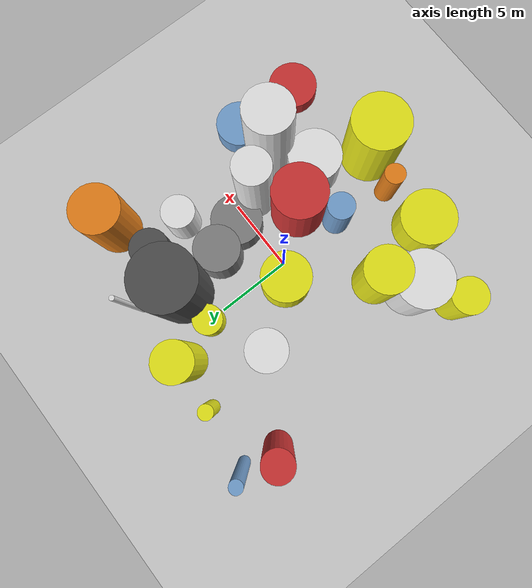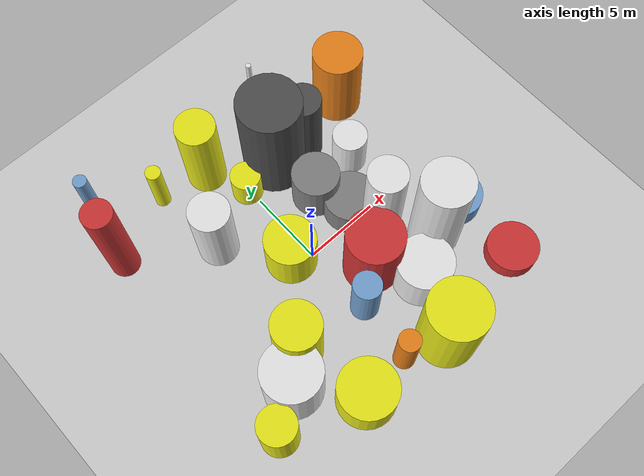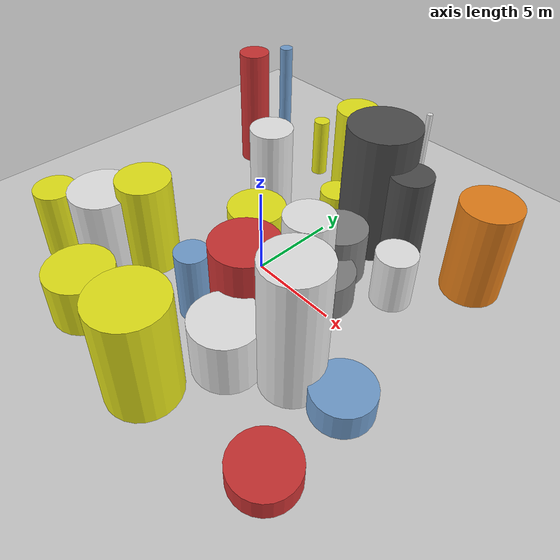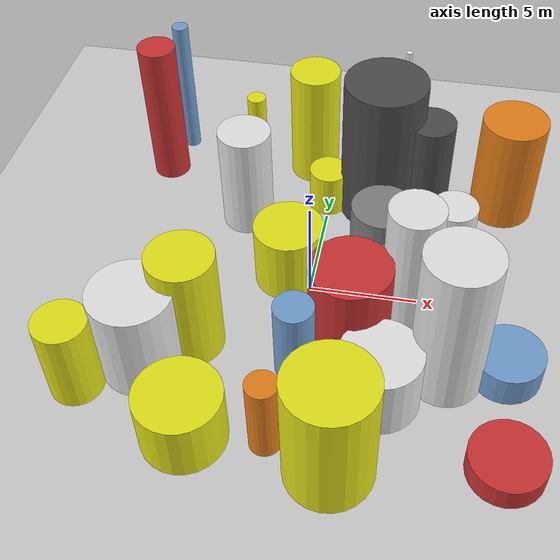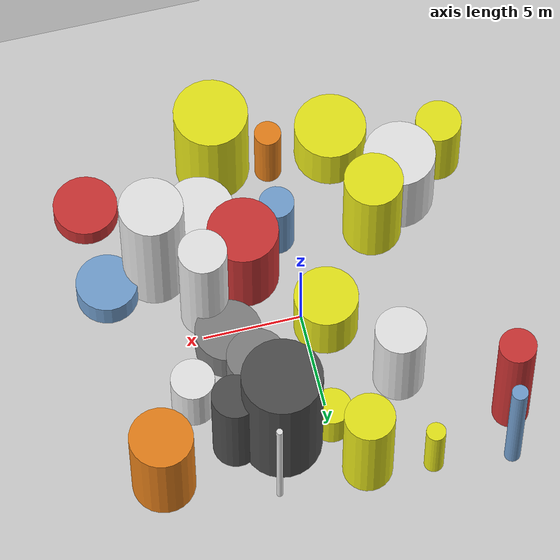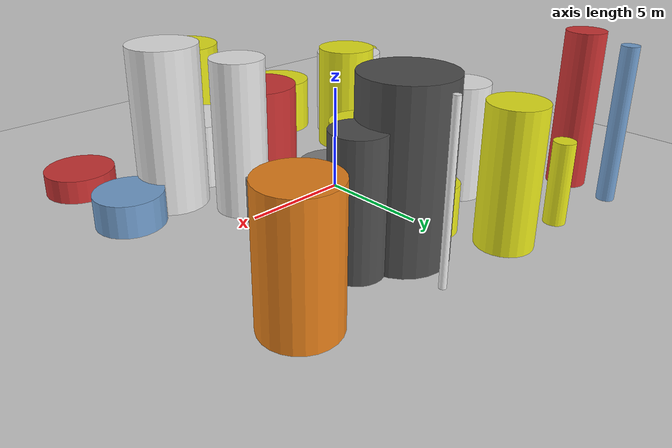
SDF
<?xml version='1.0'?>
<sdf version='1.6'>
  <world name='default'>
    <!-- Sun light -->
    <light name='sun' type='directional'>
      <cast_shadows>1</cast_shadows>
      <pose>0 0 10 0 0 0</pose>
      <diffuse>0.8 0.8 0.8 1</diffuse>
      <specular>0.2 0.2 0.2 1</specular>
      <attenuation>
        <range>1000</range>
        <constant>0.9</constant>
        <linear>0.01</linear>
        <quadratic>0.001</quadratic>
      </attenuation>
      <direction>-0.5 0.1 -0.9</direction>
    </light>

    <!-- Ground plane -->
    <model name='ground_plane'>
      <static>1</static>
      <link name='link'>
        <collision name='collision'>
          <geometry>
            <plane>
              <normal>0 0 1</normal>
              <size>100 100</size>
            </plane>
          </geometry>
          <surface>
            <contact>
              <collide_bitmask>65535</collide_bitmask>
              <ode/>
            </contact>
            <friction>
              <ode>
                <mu>100</mu>
                <mu2>50</mu2>
              </ode>
              <torsional><ode/></torsional>
            </friction>
            <bounce/>
          </surface>
          <max_contacts>10</max_contacts>
        </collision>
        <visual name='visual'>
          <cast_shadows>0</cast_shadows>
          <geometry>
            <plane>
              <normal>0 0 1</normal>
              <size>100 100</size>
            </plane>
          </geometry>
          <material>
            <script>
              <uri>file://media/materials/scripts/gazebo.material</uri>
              <n>Gazebo/Grey</n>
            </script>
          </material>
        </visual>
      </link>
    </model>

    <!-- Environment -->
    <magnetic_field>6e-06 2.3e-05 -4.2e-05</magnetic_field>
    <atmosphere type='adiabatic'/>
    <physics name='default_physics' default='0' type='ode'>
      <gravity>0 0 -9.8</gravity>
      <max_step_size>0.004</max_step_size>
      <real_time_factor>1</real_time_factor>
      <real_time_update_rate>250</real_time_update_rate>
    </physics>
    <scene>
      <ambient>0.4 0.4 0.4 1</ambient>
      <background>0.7 0.7 0.7 1</background>
      <shadows>1</shadows>
    </scene>
    <wind/>
    <spherical_coordinates>
      <surface_model>EARTH_WGS84</surface_model>
      <latitude_deg>0</latitude_deg>
      <longitude_deg>0</longitude_deg>
      <elevation>0</elevation>
      <heading_deg>0</heading_deg>
    </spherical_coordinates>

    <!-- ============ OBSTACLES (27) ============ -->
    <model name='obs_00'>
      <static>1</static>
      <link name='link'>
        <visual name='visual'>
          <geometry>
            <cylinder>
              <radius>1.1622</radius>
              <length>4.1610</length>
            </cylinder>
          </geometry>
          <material>
            <script>
              <n>Gazebo/Yellow</n>
              <uri>file://media/materials/scripts/gazebo.material</uri>
            </script>
            <ambient>0.9 0.9 0.1 1</ambient>
          </material>
        </visual>
        <collision name='collision'>
          <geometry>
            <cylinder>
              <radius>1.1622</radius>
              <length>4.1610</length>
            </cylinder>
          </geometry>
          <max_contacts>10</max_contacts>
          <surface>
            <contact><ode/></contact>
            <bounce/>
            <friction>
              <ode><mu>1</mu><mu2>1</mu2></ode>
              <torsional><ode/></torsional>
            </friction>
          </surface>
        </collision>
      </link>
      <pose>-8.8361 -7.0498 2.0805 0 0 0.1633</pose>
    </model>

    <model name='obs_01'>
      <static>1</static>
      <link name='link'>
        <visual name='visual'>
          <geometry>
            <cylinder>
              <radius>0.9268</radius>
              <length>7.5732</length>
            </cylinder>
          </geometry>
          <material>
            <script>
              <n>Gazebo/Red</n>
              <uri>file://media/materials/scripts/gazebo.material</uri>
            </script>
            <ambient>0.8 0.2 0.2 1</ambient>
          </material>
        </visual>
        <collision name='collision'>
          <geometry>
            <cylinder>
              <radius>0.9268</radius>
              <length>7.5732</length>
            </cylinder>
          </geometry>
          <max_contacts>10</max_contacts>
          <surface>
            <contact><ode/></contact>
            <bounce/>
            <friction>
              <ode><mu>1</mu><mu2>1</mu2></ode>
              <torsional><ode/></torsional>
            </friction>
          </surface>
        </collision>
      </link>
      <pose>-8.8731 7.4381 3.7866 0 0 2.9056</pose>
    </model>

    <model name='obs_02'>
      <static>1</static>
      <link name='link'>
        <visual name='visual'>
          <geometry>
            <cylinder>
              <radius>0.4037</radius>
              <length>7.3585</length>
            </cylinder>
          </geometry>
          <material>
            <script>
              <n>Gazebo/Blue</n>
              <uri>file://media/materials/scripts/gazebo.material</uri>
            </script>
            <ambient>0.447 0.624 0.812 1</ambient>
          </material>
        </visual>
        <collision name='collision'>
          <geometry>
            <cylinder>
              <radius>0.4037</radius>
              <length>7.3585</length>
            </cylinder>
          </geometry>
          <max_contacts>10</max_contacts>
          <surface>
            <contact><ode/></contact>
            <bounce/>
            <friction>
              <ode><mu>1</mu><mu2>1</mu2></ode>
              <torsional><ode/></torsional>
            </friction>
          </surface>
        </collision>
      </link>
      <pose>-8.3619 9.7495 3.6792 0 0 0.0985</pose>
    </model>

    <model name='obs_03'>
      <static>1</static>
      <link name='link'>
        <visual name='visual'>
          <geometry>
            <cylinder>
              <radius>0.6805</radius>
              <length>3.9717</length>
            </cylinder>
          </geometry>
          <material>
            <script>
              <n>Gazebo/Orange</n>
              <uri>file://media/materials/scripts/gazebo.material</uri>
            </script>
            <ambient>0.9 0.5 0.1 1</ambient>
          </material>
        </visual>
        <collision name='collision'>
          <geometry>
            <cylinder>
              <radius>0.6805</radius>
              <length>3.9717</length>
            </cylinder>
          </geometry>
          <max_contacts>10</max_contacts>
          <surface>
            <contact><ode/></contact>
            <bounce/>
            <friction>
              <ode><mu>1</mu><mu2>1</mu2></ode>
              <torsional><ode/></torsional>
            </friction>
          </surface>
        </collision>
      </link>
      <pose>-0.3446 -8.4930 1.9858 0 0 0.4116</pose>
    </model>

    <model name='obs_04'>
      <static>1</static>
      <link name='link'>
        <visual name='visual'>
          <geometry>
            <cylinder>
              <radius>1.8776</radius>
              <length>5.8826</length>
            </cylinder>
          </geometry>
          <material>
            <script>
              <n>Gazebo/Yellow</n>
              <uri>file://media/materials/scripts/gazebo.material</uri>
            </script>
            <ambient>0.9 0.9 0.1 1</ambient>
          </material>
        </visual>
        <collision name='collision'>
          <geometry>
            <cylinder>
              <radius>1.8776</radius>
              <length>5.8826</length>
            </cylinder>
          </geometry>
          <max_contacts>10</max_contacts>
          <surface>
            <contact><ode/></contact>
            <bounce/>
            <friction>
              <ode><mu>1</mu><mu2>1</mu2></ode>
              <torsional><ode/></torsional>
            </friction>
          </surface>
        </collision>
      </link>
      <pose>2.3837 -9.2832 2.9413 0 0 0.2246</pose>
    </model>

    <model name='obs_05'>
      <static>1</static>
      <link name='link'>
        <visual name='visual'>
          <geometry>
            <cylinder>
              <radius>1.2147</radius>
              <length>7.0610</length>
            </cylinder>
          </geometry>
          <material>
            <script>
              <n>Gazebo/White</n>
              <uri>file://media/materials/scripts/gazebo.material</uri>
            </script>
            <ambient>0.9 0.9 0.9 1</ambient>
          </material>
        </visual>
        <collision name='collision'>
          <geometry>
            <cylinder>
              <radius>1.2147</radius>
              <length>7.0610</length>
            </cylinder>
          </geometry>
          <max_contacts>10</max_contacts>
          <surface>
            <contact><ode/></contact>
            <bounce/>
            <friction>
              <ode><mu>1</mu><mu2>1</mu2></ode>
              <torsional><ode/></torsional>
            </friction>
          </surface>
        </collision>
      </link>
      <pose>4.6297 -1.2914 3.5305 0 0 1.2790</pose>
    </model>

    <model name='obs_06'>
      <static>1</static>
      <link name='link'>
        <visual name='visual'>
          <geometry>
            <cylinder>
              <radius>0.9695</radius>
              <length>2.2417</length>
            </cylinder>
          </geometry>
          <material>
            <script>
              <n>Gazebo/Yellow</n>
              <uri>file://media/materials/scripts/gazebo.material</uri>
            </script>
            <ambient>0.9 0.9 0.1 1</ambient>
          </material>
        </visual>
        <collision name='collision'>
          <geometry>
            <cylinder>
              <radius>0.9695</radius>
              <length>2.2417</length>
            </cylinder>
          </geometry>
          <max_contacts>10</max_contacts>
          <surface>
            <contact><ode/></contact>
            <bounce/>
            <friction>
              <ode><mu>1</mu><mu2>1</mu2></ode>
              <torsional><ode/></torsional>
            </friction>
          </surface>
        </collision>
      </link>
      <pose>-0.0881 6.0907 1.1209 0 0 2.9997</pose>
    </model>

    <model name='obs_07'>
      <static>1</static>
      <link name='link'>
        <visual name='visual'>
          <geometry>
            <cylinder>
              <radius>0.4868</radius>
              <length>3.8204</length>
            </cylinder>
          </geometry>
          <material>
            <script>
              <n>Gazebo/Yellow</n>
              <uri>file://media/materials/scripts/gazebo.material</uri>
            </script>
            <ambient>0.9 0.9 0.1 1</ambient>
          </material>
        </visual>
        <collision name='collision'>
          <geometry>
            <cylinder>
              <radius>0.4868</radius>
              <length>3.8204</length>
            </cylinder>
          </geometry>
          <max_contacts>10</max_contacts>
          <surface>
            <contact><ode/></contact>
            <bounce/>
            <friction>
              <ode><mu>1</mu><mu2>1</mu2></ode>
              <torsional><ode/></torsional>
            </friction>
          </surface>
        </collision>
      </link>
      <pose>-4.4724 9.2910 1.9102 0 0 0.1124</pose>
    </model>

    <model name='obs_08'>
      <static>1</static>
      <link name='link'>
        <visual name='visual'>
          <geometry>
            <cylinder>
              <radius>1.6035</radius>
              <length>7.5135</length>
            </cylinder>
          </geometry>
          <material>
            <script>
              <n>Gazebo/White</n>
              <uri>file://media/materials/scripts/gazebo.material</uri>
            </script>
            <ambient>0.9 0.9 0.9 1</ambient>
          </material>
        </visual>
        <collision name='collision'>
          <geometry>
            <cylinder>
              <radius>1.6035</radius>
              <length>7.5135</length>
            </cylinder>
          </geometry>
          <max_contacts>10</max_contacts>
          <surface>
            <contact><ode/></contact>
            <bounce/>
            <friction>
              <ode><mu>1</mu><mu2>1</mu2></ode>
              <torsional><ode/></torsional>
            </friction>
          </surface>
        </collision>
      </link>
      <pose>6.5717 -4.0223 3.7568 0 0 0.3085</pose>
    </model>

    <model name='obs_09'>
      <static>1</static>
      <link name='link'>
        <visual name='visual'>
          <geometry>
            <cylinder>
              <radius>1.7901</radius>
              <length>5.0259</length>
            </cylinder>
          </geometry>
          <material>
            <script>
              <n>Gazebo/Red</n>
              <uri>file://media/materials/scripts/gazebo.material</uri>
            </script>
            <ambient>0.8 0.2 0.2 1</ambient>
          </material>
        </visual>
        <collision name='collision'>
          <geometry>
            <cylinder>
              <radius>1.7901</radius>
              <length>5.0259</length>
            </cylinder>
          </geometry>
          <max_contacts>10</max_contacts>
          <surface>
            <contact><ode/></contact>
            <bounce/>
            <friction>
              <ode><mu>1</mu><mu2>1</mu2></ode>
              <torsional><ode/></torsional>
            </friction>
          </surface>
        </collision>
      </link>
      <pose>2.2372 -2.9737 2.5130 0 0 1.8555</pose>
    </model>

    <model name='obs_10'>
      <static>1</static>
      <link name='link'>
        <visual name='visual'>
          <geometry>
            <cylinder>
              <radius>1.9934</radius>
              <length>7.6337</length>
            </cylinder>
          </geometry>
          <material>
            <script>
              <n>Gazebo/DarkGrey</n>
              <uri>file://media/materials/scripts/gazebo.material</uri>
            </script>
            <ambient>0.3 0.3 0.3 1</ambient>
          </material>
        </visual>
        <collision name='collision'>
          <geometry>
            <cylinder>
              <radius>1.9934</radius>
              <length>7.6337</length>
            </cylinder>
          </geometry>
          <max_contacts>10</max_contacts>
          <surface>
            <contact><ode/></contact>
            <bounce/>
            <friction>
              <ode><mu>1</mu><mu2>1</mu2></ode>
              <torsional><ode/></torsional>
            </friction>
          </surface>
        </collision>
      </link>
      <pose>2.4937 6.3740 3.8169 0 0 0.2226</pose>
    </model>

    <model name='obs_11'>
      <static>1</static>
      <link name='link'>
        <visual name='visual'>
          <geometry>
            <cylinder>
              <radius>1.4860</radius>
              <length>5.4716</length>
            </cylinder>
          </geometry>
          <material>
            <script>
              <n>Gazebo/Yellow</n>
              <uri>file://media/materials/scripts/gazebo.material</uri>
            </script>
            <ambient>0.9 0.9 0.1 1</ambient>
          </material>
        </visual>
        <collision name='collision'>
          <geometry>
            <cylinder>
              <radius>1.4860</radius>
              <length>5.4716</length>
            </cylinder>
          </geometry>
          <max_contacts>10</max_contacts>
          <surface>
            <contact><ode/></contact>
            <bounce/>
            <friction>
              <ode><mu>1</mu><mu2>1</mu2></ode>
              <torsional><ode/></torsional>
            </friction>
          </surface>
        </collision>
      </link>
      <pose>-4.6639 -3.9509 2.7358 0 0 0.9143</pose>
    </model>

    <model name='obs_12'>
      <static>1</static>
      <link name='link'>
        <visual name='visual'>
          <geometry>
            <cylinder>
              <radius>1.8170</radius>
              <length>4.6298</length>
            </cylinder>
          </geometry>
          <material>
            <script>
              <n>Gazebo/White</n>
              <uri>file://media/materials/scripts/gazebo.material</uri>
            </script>
            <ambient>0.9 0.9 0.9 1</ambient>
          </material>
        </visual>
        <collision name='collision'>
          <geometry>
            <cylinder>
              <radius>1.8170</radius>
              <length>4.6298</length>
            </cylinder>
          </geometry>
          <max_contacts>10</max_contacts>
          <surface>
            <contact><ode/></contact>
            <bounce/>
            <friction>
              <ode><mu>1</mu><mu2>1</mu2></ode>
              <torsional><ode/></torsional>
            </friction>
          </surface>
        </collision>
      </link>
      <pose>-6.4031 -5.4839 2.3149 0 0 3.1313</pose>
    </model>

    <model name='obs_13'>
      <static>1</static>
      <link name='link'>
        <visual name='visual'>
          <geometry>
            <cylinder>
              <radius>0.1578</radius>
              <length>7.5357</length>
            </cylinder>
          </geometry>
          <material>
            <script>
              <n>Gazebo/White</n>
              <uri>file://media/materials/scripts/gazebo.material</uri>
            </script>
            <ambient>0.9 0.9 0.9 1</ambient>
          </material>
        </visual>
        <collision name='collision'>
          <geometry>
            <cylinder>
              <radius>0.1578</radius>
              <length>7.5357</length>
            </cylinder>
          </geometry>
          <max_contacts>10</max_contacts>
          <surface>
            <contact><ode/></contact>
            <bounce/>
            <friction>
              <ode><mu>1</mu><mu2>1</mu2></ode>
              <torsional><ode/></torsional>
            </friction>
          </surface>
        </collision>
      </link>
      <pose>3.2815 9.1041 3.7678 0 0 2.4889</pose>
    </model>

    <model name='obs_14'>
      <static>1</static>
      <link name='link'>
        <visual name='visual'>
          <geometry>
            <cylinder>
              <radius>1.1616</radius>
              <length>5.8450</length>
            </cylinder>
          </geometry>
          <material>
            <script>
              <n>Gazebo/DarkGrey</n>
              <uri>file://media/materials/scripts/gazebo.material</uri>
            </script>
            <ambient>0.3 0.3 0.3 1</ambient>
          </material>
        </visual>
        <collision name='collision'>
          <geometry>
            <cylinder>
              <radius>1.1616</radius>
              <length>5.8450</length>
            </cylinder>
          </geometry>
          <max_contacts>10</max_contacts>
          <surface>
            <contact><ode/></contact>
            <bounce/>
            <friction>
              <ode><mu>1</mu><mu2>1</mu2></ode>
              <torsional><ode/></torsional>
            </friction>
          </surface>
        </collision>
      </link>
      <pose>4.7597 6.0664 2.9225 0 0 3.0337</pose>
    </model>

    <model name='obs_15'>
      <static>1</static>
      <link name='link'>
        <visual name='visual'>
          <geometry>
            <cylinder>
              <radius>1.1003</radius>
              <length>3.1207</length>
            </cylinder>
          </geometry>
          <material>
            <script>
              <n>Gazebo/White</n>
              <uri>file://media/materials/scripts/gazebo.material</uri>
            </script>
            <ambient>0.9 0.9 0.9 1</ambient>
          </material>
        </visual>
        <collision name='collision'>
          <geometry>
            <cylinder>
              <radius>1.1003</radius>
              <length>3.1207</length>
            </cylinder>
          </geometry>
          <max_contacts>10</max_contacts>
          <surface>
            <contact><ode/></contact>
            <bounce/>
            <friction>
              <ode><mu>1</mu><mu2>1</mu2></ode>
              <torsional><ode/></torsional>
            </friction>
          </surface>
        </collision>
      </link>
      <pose>6.3114 3.4666 1.5604 0 0 2.1550</pose>
    </model>

    <model name='obs_16'>
      <static>1</static>
      <link name='link'>
        <visual name='visual'>
          <geometry>
            <cylinder>
              <radius>1.6388</radius>
              <length>1.1241</length>
            </cylinder>
          </geometry>
          <material>
            <script>
              <n>Gazebo/Red</n>
              <uri>file://media/materials/scripts/gazebo.material</uri>
            </script>
            <ambient>0.8 0.2 0.2 1</ambient>
          </material>
        </visual>
        <collision name='collision'>
          <geometry>
            <cylinder>
              <radius>1.6388</radius>
              <length>1.1241</length>
            </cylinder>
          </geometry>
          <max_contacts>10</max_contacts>
          <surface>
            <contact><ode/></contact>
            <bounce/>
            <friction>
              <ode><mu>1</mu><mu2>1</mu2></ode>
              <torsional><ode/></torsional>
            </friction>
          </surface>
        </collision>
      </link>
      <pose>9.2533 -8.1325 0.5620 0 0 1.8437</pose>
    </model>

    <model name='obs_17'>
      <static>1</static>
      <link name='link'>
        <visual name='visual'>
          <geometry>
            <cylinder>
              <radius>1.2722</radius>
              <length>5.4721</length>
            </cylinder>
          </geometry>
          <material>
            <script>
              <n>Gazebo/White</n>
              <uri>file://media/materials/scripts/gazebo.material</uri>
            </script>
            <ambient>0.9 0.9 0.9 1</ambient>
          </material>
        </visual>
        <collision name='collision'>
          <geometry>
            <cylinder>
              <radius>1.2722</radius>
              <length>5.4721</length>
            </cylinder>
          </geometry>
          <max_contacts>10</max_contacts>
          <surface>
            <contact><ode/></contact>
            <bounce/>
            <friction>
              <ode><mu>1</mu><mu2>1</mu2></ode>
              <torsional><ode/></torsional>
            </friction>
          </surface>
        </collision>
      </link>
      <pose>-3.9222 4.3627 2.7361 0 0 1.4334</pose>
    </model>

    <model name='obs_18'>
      <static>1</static>
      <link name='link'>
        <visual name='visual'>
          <geometry>
            <cylinder>
              <radius>1.5789</radius>
              <length>5.5890</length>
            </cylinder>
          </geometry>
          <material>
            <script>
              <n>Gazebo/Orange</n>
              <uri>file://media/materials/scripts/gazebo.material</uri>
            </script>
            <ambient>0.9 0.5 0.1 1</ambient>
          </material>
        </visual>
        <collision name='collision'>
          <geometry>
            <cylinder>
              <radius>1.5789</radius>
              <length>5.5890</length>
            </cylinder>
          </geometry>
          <max_contacts>10</max_contacts>
          <surface>
            <contact><ode/></contact>
            <bounce/>
            <friction>
              <ode><mu>1</mu><mu2>1</mu2></ode>
              <torsional><ode/></torsional>
            </friction>
          </surface>
        </collision>
      </link>
      <pose>8.6798 7.2303 2.7945 0 0 2.0031</pose>
    </model>

    <model name='obs_19'>
      <static>1</static>
      <link name='link'>
        <visual name='visual'>
          <geometry>
            <cylinder>
              <radius>1.2479</radius>
              <length>6.1776</length>
            </cylinder>
          </geometry>
          <material>
            <script>
              <n>Gazebo/Yellow</n>
              <uri>file://media/materials/scripts/gazebo.material</uri>
            </script>
            <ambient>0.9 0.9 0.1 1</ambient>
          </material>
        </visual>
        <collision name='collision'>
          <geometry>
            <cylinder>
              <radius>1.2479</radius>
              <length>6.1776</length>
            </cylinder>
          </geometry>
          <max_contacts>10</max_contacts>
          <surface>
            <contact><ode/></contact>
            <bounce/>
            <friction>
              <ode><mu>1</mu><mu2>1</mu2></ode>
              <torsional><ode/></torsional>
            </friction>
          </surface>
        </collision>
      </link>
      <pose>-1.2444 8.7780 3.0888 0 0 1.5469</pose>
    </model>

    <model name='obs_20'>
      <static>1</static>
      <link name='link'>
        <visual name='visual'>
          <geometry>
            <cylinder>
              <radius>1.5574</radius>
              <length>1.5011</length>
            </cylinder>
          </geometry>
          <material>
            <script>
              <n>Gazebo/Blue</n>
              <uri>file://media/materials/scripts/gazebo.material</uri>
            </script>
            <ambient>0.447 0.624 0.812 1</ambient>
          </material>
        </visual>
        <collision name='collision'>
          <geometry>
            <cylinder>
              <radius>1.5574</radius>
              <length>1.5011</length>
            </cylinder>
          </geometry>
          <max_contacts>10</max_contacts>
          <surface>
            <contact><ode/></contact>
            <bounce/>
            <friction>
              <ode><mu>1</mu><mu2>1</mu2></ode>
              <torsional><ode/></torsional>
            </friction>
          </surface>
        </collision>
      </link>
      <pose>9.1518 -3.4539 0.7505 0 0 0.2023</pose>
    </model>

    <model name='obs_21'>
      <static>1</static>
      <link name='link'>
        <visual name='visual'>
          <geometry>
            <cylinder>
              <radius>1.7682</radius>
              <length>3.1230</length>
            </cylinder>
          </geometry>
          <material>
            <script>
              <n>Gazebo/White</n>
              <uri>file://media/materials/scripts/gazebo.material</uri>
            </script>
            <ambient>0.9 0.9 0.9 1</ambient>
          </material>
        </visual>
        <collision name='collision'>
          <geometry>
            <cylinder>
              <radius>1.7682</radius>
              <length>3.1230</length>
            </cylinder>
          </geometry>
          <max_contacts>10</max_contacts>
          <surface>
            <contact><ode/></contact>
            <bounce/>
            <friction>
              <ode><mu>1</mu><mu2>1</mu2></ode>
              <torsional><ode/></torsional>
            </friction>
          </surface>
        </collision>
      </link>
      <pose>3.8962 -5.6198 1.5615 0 0 2.2455</pose>
    </model>

    <model name='obs_22'>
      <static>1</static>
      <link name='link'>
        <visual name='visual'>
          <geometry>
            <cylinder>
              <radius>1.6178</radius>
              <length>3.2859</length>
            </cylinder>
          </geometry>
          <material>
            <script>
              <n>Gazebo/Yellow</n>
              <uri>file://media/materials/scripts/gazebo.material</uri>
            </script>
            <ambient>0.9 0.9 0.1 1</ambient>
          </material>
        </visual>
        <collision name='collision'>
          <geometry>
            <cylinder>
              <radius>1.6178</radius>
              <length>3.2859</length>
            </cylinder>
          </geometry>
          <max_contacts>10</max_contacts>
          <surface>
            <contact><ode/></contact>
            <bounce/>
            <friction>
              <ode><mu>1</mu><mu2>1</mu2></ode>
              <torsional><ode/></torsional>
            </friction>
          </surface>
        </collision>
      </link>
      <pose>-1.1161 0.6936 1.6430 0 0 1.1399</pose>
    </model>

    <model name='obs_23'>
      <static>1</static>
      <link name='link'>
        <visual name='visual'>
          <geometry>
            <cylinder>
              <radius>1.8305</radius>
              <length>2.8784</length>
            </cylinder>
          </geometry>
          <material>
            <script>
              <n>Gazebo/Yellow</n>
              <uri>file://media/materials/scripts/gazebo.material</uri>
            </script>
            <ambient>0.9 0.9 0.1 1</ambient>
          </material>
        </visual>
        <collision name='collision'>
          <geometry>
            <cylinder>
              <radius>1.8305</radius>
              <length>2.8784</length>
            </cylinder>
          </geometry>
          <max_contacts>10</max_contacts>
          <surface>
            <contact><ode/></contact>
            <bounce/>
            <friction>
              <ode><mu>1</mu><mu2>1</mu2></ode>
              <torsional><ode/></torsional>
            </friction>
          </surface>
        </collision>
      </link>
      <pose>-3.6577 -8.7345 1.4392 0 0 1.8700</pose>
    </model>

    <model name='obs_24'>
      <static>1</static>
      <link name='link'>
        <visual name='visual'>
          <geometry>
            <cylinder>
              <radius>1.5092</radius>
              <length>3.0473</length>
            </cylinder>
          </geometry>
          <material>
            <script>
              <n>Gazebo/Grey</n>
              <uri>file://media/materials/scripts/gazebo.material</uri>
            </script>
            <ambient>0.5 0.5 0.5 1</ambient>
          </material>
        </visual>
        <collision name='collision'>
          <geometry>
            <cylinder>
              <radius>1.5092</radius>
              <length>3.0473</length>
            </cylinder>
          </geometry>
          <max_contacts>10</max_contacts>
          <surface>
            <contact><ode/></contact>
            <bounce/>
            <friction>
              <ode><mu>1</mu><mu2>1</mu2></ode>
              <torsional><ode/></torsional>
            </friction>
          </surface>
        </collision>
      </link>
      <pose>2.9655 2.9590 1.5236 0 0 0.3359</pose>
    </model>

    <model name='obs_25'>
      <static>1</static>
      <link name='link'>
        <visual name='visual'>
          <geometry>
            <cylinder>
              <radius>1.6806</radius>
              <length>2.0134</length>
            </cylinder>
          </geometry>
          <material>
            <script>
              <n>Gazebo/Grey</n>
              <uri>file://media/materials/scripts/gazebo.material</uri>
            </script>
            <ambient>0.5 0.5 0.5 1</ambient>
          </material>
        </visual>
        <collision name='collision'>
          <geometry>
            <cylinder>
              <radius>1.6806</radius>
              <length>2.0134</length>
            </cylinder>
          </geometry>
          <max_contacts>10</max_contacts>
          <surface>
            <contact><ode/></contact>
            <bounce/>
            <friction>
              <ode><mu>1</mu><mu2>1</mu2></ode>
              <torsional><ode/></torsional>
            </friction>
          </surface>
        </collision>
      </link>
      <pose>3.8975 0.7829 1.0067 0 0 2.4482</pose>
    </model>

    <model name='obs_26'>
      <static>1</static>
      <link name='link'>
        <visual name='visual'>
          <geometry>
            <cylinder>
              <radius>0.8874</radius>
              <length>3.9965</length>
            </cylinder>
          </geometry>
          <material>
            <script>
              <n>Gazebo/Blue</n>
              <uri>file://media/materials/scripts/gazebo.material</uri>
            </script>
            <ambient>0.447 0.624 0.812 1</ambient>
          </material>
        </visual>
        <collision name='collision'>
          <geometry>
            <cylinder>
              <radius>0.8874</radius>
              <length>3.9965</length>
            </cylinder>
          </geometry>
          <max_contacts>10</max_contacts>
          <surface>
            <contact><ode/></contact>
            <bounce/>
            <friction>
              <ode><mu>1</mu><mu2>1</mu2></ode>
              <torsional><ode/></torsional>
            </friction>
          </surface>
        </collision>
      </link>
      <pose>0.1326 -4.5852 1.9982 0 0 0.9143</pose>
    </model>

    <!-- GUI camera -->
    <gui fullscreen='0'>
      <camera name='user_camera'>
        <pose>-15 0 18 0 0.85 0.15</pose>
        <view_controller>orbit</view_controller>
        <projection_type>perspective</projection_type>
      </camera>
    </gui>
  </world>
</sdf>
